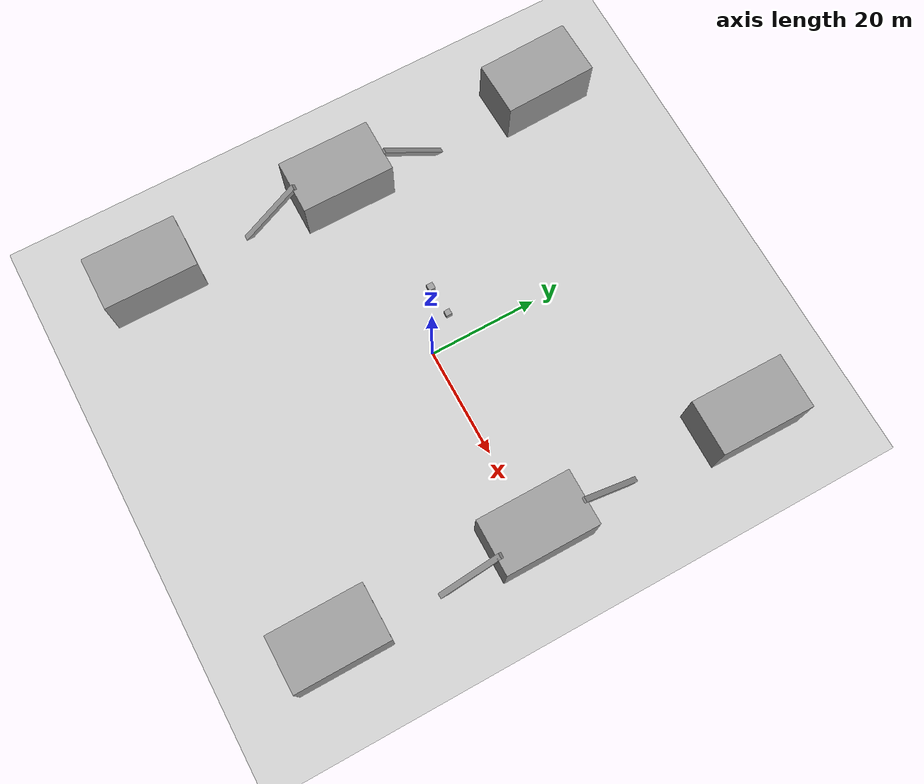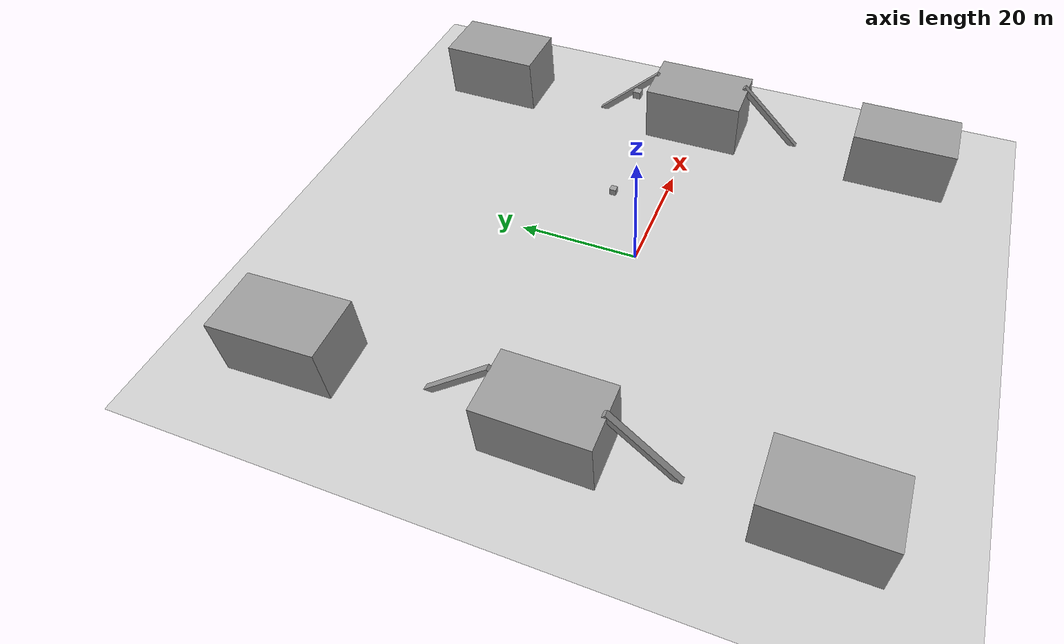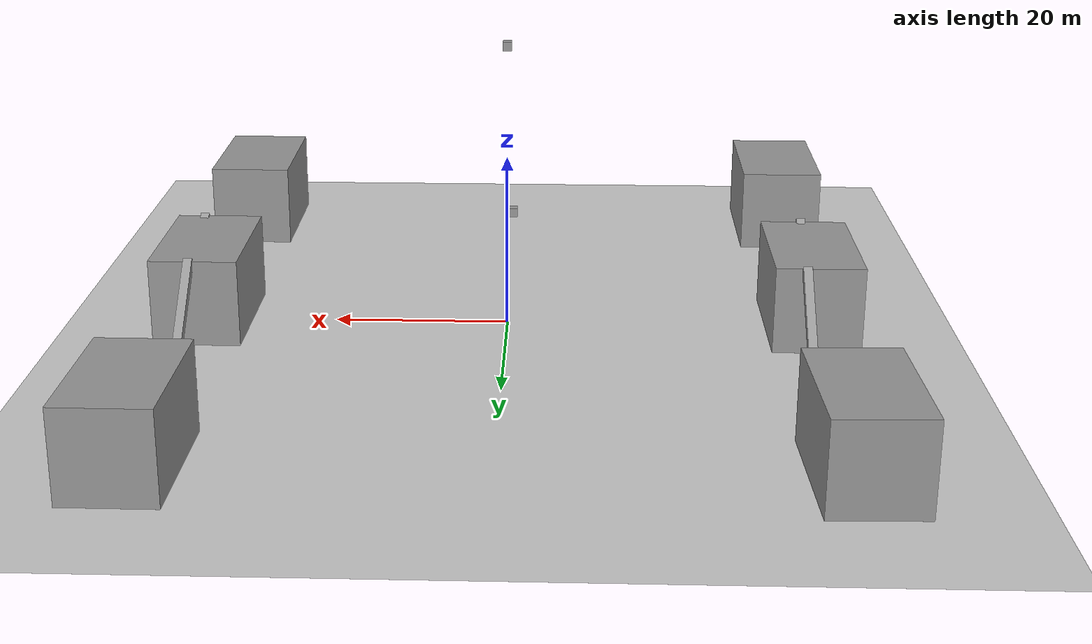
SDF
<sdf version="1.6">
 <world name="default">
  <light name="sun" type="directional">
   <pose>0 0 10 0 -0 0</pose>
   <diffuse>0.8 0.8 0.8 1</diffuse>
   <specular>0.2 0.2 0.2 1</specular>
   <attenuation>
    <range>1000</range>
    <constant>0.9</constant>
    <linear>0.01</linear>
    <quadratic>0.001</quadratic>
   </attenuation>
   <direction>-0.5 0.1 -0.9</direction>
  </light>
  <model name="ground_plane">
   <static>1</static>
   <link name="link">
    <collision name="collision">
     <geometry><plane><normal>0 0 1</normal><size>100 100</size></plane></geometry>
     <surface>
      <contact><collide_bitmask>65535</collide_bitmask></contact>
      <friction><ode><mu>100</mu><mu2>50</mu2></ode></friction>
     </surface>
    </collision>
    <visual name="visual">
     <cast_shadows>0</cast_shadows>
     <geometry><plane><normal>0 0 1</normal><size>100 100</size></plane></geometry>
     <material>
      <script><uri>file://media/materials/scripts/gazebo.material</uri><name>Gazebo/Grey</name></script>
     </material>
    </visual>
   </link>
  </model>
  <gravity>0 0 -9.8</gravity>
  <magnetic_field>6e-06 2.3e-05 -4.2e-05</magnetic_field>
  <atmosphere type="adiabatic"/>
  <physics name="default_physics" default="0" type="ode">
   <max_step_size>0.001</max_step_size>
   <real_time_factor>1</real_time_factor>
   <real_time_update_rate>1000</real_time_update_rate>
  </physics>
  <scene><ambient>0.4 0.4 0.4 1</ambient><background>0.7 0.7 0.7 1</background><shadows>1</shadows></scene>
  <spherical_coordinates>
   <surface_model>EARTH_WGS84</surface_model>
   <latitude_deg>0</latitude_deg>
   <longitude_deg>0</longitude_deg>
   <elevation>0</elevation>
   <heading_deg>0</heading_deg>
  </spherical_coordinates>
  <model name="unit_box">
   <static>1</static>
   <pose>-34.9898 -37 5 1e-06 -0 -0.006221</pose>
   <link name="link">
    <inertial>
     <mass>1</mass>
     <inertia>
      <ixx>0.166667</ixx>
      <ixy>0</ixy>
      <ixz>0</ixz>
      <iyy>0.166667</iyy>
      <iyz>0</iyz>
      <izz>0.166667</izz>
     </inertia>
    </inertial>
    <collision name="collision"><geometry><box><size>10 17 10</size></box></geometry></collision>
    <visual name="visual">
     <geometry><box><size>10 17 10</size></box></geometry>
     <material>
      <script><name>Gazebo/Grey</name><uri>file://media/materials/scripts/gazebo.material</uri></script>
     </material>
    </visual>
   </link>
  </model>
  <model name="unit_box_clone">
   <static>1</static>
   <pose>-35.0075 0.014639 5 0 0 -0.001893</pose>
   <link name="link">
    <inertial>
     <mass>1</mass>
     <inertia>
      <ixx>0.166667</ixx>
      <ixy>0</ixy>
      <ixz>0</ixz>
      <iyy>0.166667</iyy>
      <iyz>0</iyz>
      <izz>0.166667</izz>
     </inertia>
    </inertial>
    <collision name="collision"><geometry><box><size>10 17 10</size></box></geometry></collision>
    <visual name="visual">
     <geometry><box><size>10 17 10</size></box></geometry>
     <material>
      <script><name>Gazebo/Grey</name><uri>file://media/materials/scripts/gazebo.material</uri></script>
     </material>
    </visual>
   </link>
  </model>
  <model name="unit_box_clone_0">
   <static>1</static>
   <pose>-35.0085 40.0385 5 0 1e-06 0.030617</pose>
   <link name="unit_box_clone_0::unit_box_clone_0::link">
    <inertial>
     <mass>1</mass>
     <inertia>
      <ixx>0.166667</ixx>
      <ixy>0</ixy>
      <ixz>0</ixz>
      <iyy>0.166667</iyy>
      <iyz>0</iyz>
      <izz>0.166667</izz>
     </inertia>
    </inertial>
    <collision name="collision"><geometry><box><size>10 17 10</size></box></geometry></collision>
    <visual name="visual">
     <geometry><box><size>10 17 10</size></box></geometry>
     <material>
      <script><name>Gazebo/Grey</name><uri>file://media/materials/scripts/gazebo.material</uri></script>
     </material>
    </visual>
   </link>
  </model>
  <model name="unit_box_clone_1">
   <static>1</static>
   <pose>34.9964 -37 5 0 -0 0.002216</pose>
   <link name="link">
    <inertial>
     <mass>1</mass>
     <inertia>
      <ixx>0.166667</ixx>
      <ixy>0</ixy>
      <ixz>0</ixz>
      <iyy>0.166667</iyy>
      <iyz>0</iyz>
      <izz>0.166667</izz>
     </inertia>
    </inertial>
    <collision name="collision"><geometry><box><size>10 17 10</size></box></geometry></collision>
    <visual name="visual">
     <geometry><box><size>10 17 10</size></box></geometry>
     <material>
      <script><name>Gazebo/Grey</name><uri>file://media/materials/scripts/gazebo.material</uri></script>
     </material>
    </visual>
   </link>
  </model>
  <model name="unit_box_clone_2">
   <static>1</static>
   <pose>34.9938 -0.00168 5 0 -0 0.000667</pose>
   <link name="link">
    <inertial>
     <mass>1</mass>
     <inertia>
      <ixx>0.166667</ixx>
      <ixy>0</ixy>
      <ixz>0</ixz>
      <iyy>0.166667</iyy>
      <iyz>0</iyz>
      <izz>0.166667</izz>
     </inertia>
    </inertial>
    <collision name="collision"><geometry><box><size>10 17 10</size></box></geometry></collision>
    <visual name="visual">
     <geometry><box><size>10 17 10</size></box></geometry>
     <material>
      <script><name>Gazebo/Grey</name><uri>file://media/materials/scripts/gazebo.material</uri></script>
     </material>
    </visual>
   </link>
  </model>
  <model name="unit_box_clone_3">
   <static>1</static>
   <pose>35.0005 40.0025 5 2e-06 -0 -0.008004</pose>
   <link name="link">
    <inertial>
     <mass>1</mass>
     <inertia>
      <ixx>0.166667</ixx>
      <ixy>0</ixy>
      <ixz>0</ixz>
      <iyy>0.166667</iyy>
      <iyz>0</iyz>
      <izz>0.166667</izz>
     </inertia>
    </inertial>
    <collision name="collision"><geometry><box><size>10 17 10</size></box></geometry></collision>
    <visual name="visual">
     <geometry><box><size>10 17 10</size></box></geometry>
     <material>
      <script><name>Gazebo/Grey</name><uri>file://media/materials/scripts/gazebo.material</uri></script>
     </material>
    </visual>
   </link>
  </model>
  <model name="unit_box_0">
   <static>1</static>
   <pose>-0.779903 3.34051 14.6451 0 -0 0</pose>
   <link name="unit_box_0::link">
    <gravity>0</gravity>
    <inertial>
     <mass>0.1</mass>
     <inertia>
      <ixx>0.166667</ixx>
      <ixy>0</ixy>
      <ixz>0</ixz>
      <iyy>0.166667</iyy>
      <iyz>0</iyz>
      <izz>0.166667</izz>
     </inertia>
    </inertial>
    <collision name="collision"><geometry><box><size>1.00002 0.999975 0.999997</size></box></geometry></collision>
    <visual name="visual">
     <geometry><box><size>1.00002 0.999975 0.999997</size></box></geometry>
     <material>
      <script><name>Gazebo/Grey</name><uri>file://media/materials/scripts/gazebo.material</uri></script>
     </material>
    </visual>
   </link>
  </model>
  <model name="unit_box_1">
   <pose>-0.012494 -0.056227 32.9125 2e-06 -2e-05 -0.005014</pose>
   <link name="link">
    <inertial>
     <mass>1</mass>
     <inertia>
      <ixx>0.166667</ixx>
      <ixy>0</ixy>
      <ixz>0</ixz>
      <iyy>0.166667</iyy>
      <iyz>0</iyz>
      <izz>0.166667</izz>
     </inertia>
    </inertial>
    <collision name="collision"><geometry><box><size>0.999992 1.00001 1</size></box></geometry></collision>
    <visual name="visual">
     <geometry><box><size>0.999992 1.00001 1</size></box></geometry>
     <material>
      <script><name>Gazebo/Grey</name><uri>file://media/materials/scripts/gazebo.material</uri></script>
     </material>
    </visual>
   </link>
  </model>
  <model name="unit_box_2">
   <pose>-34.7401 -13.4404 4.62722 -0.78682 0.001471 -0.002587</pose>
   <link name="link">
    <inertial>
     <mass>1</mass>
     <inertia>
      <ixx>0.166667</ixx>
      <ixy>0</ixy>
      <ixz>0</ixz>
      <iyy>0.166667</iyy>
      <iyz>0</iyz>
      <izz>0.166667</izz>
     </inertia>
    </inertial>
    <collision name="collision"><geometry><box><size>0.999999 1 15.5932</size></box></geometry></collision>
    <visual name="visual">
     <geometry><box><size>0.999999 1 15.5932</size></box></geometry>
     <material>
      <script><name>Gazebo/Grey</name><uri>file://media/materials/scripts/gazebo.material</uri></script>
     </material>
    </visual>
   </link>
  </model>
  <model name="unit_box_2_clone">
   <pose>-33.4188 14.132 4.66097 0.821719 0.001471 -0.002587</pose>
   <link name="link">
    <inertial>
     <mass>1</mass>
     <inertia>
      <ixx>0.166667</ixx>
      <ixy>0</ixy>
      <ixz>0</ixz>
      <iyy>0.166667</iyy>
      <iyz>0</iyz>
      <izz>0.166667</izz>
     </inertia>
    </inertial>
    <collision name="collision"><geometry><box><size>0.999999 1 15.5932</size></box></geometry></collision>
    <visual name="visual">
     <geometry><box><size>0.999999 1 15.5932</size></box></geometry>
     <material>
      <script><name>Gazebo/Grey</name><uri>file://media/materials/scripts/gazebo.material</uri></script>
     </material>
    </visual>
   </link>
  </model>
  <model name="unit_box_2_clone_clone_0">
   <pose>35.4897 13.5959 4.66097 0.821719 0.001471 -0.002587</pose>
   <link name="link">
    <inertial>
     <mass>1</mass>
     <inertia>
      <ixx>0.166667</ixx>
      <ixy>0</ixy>
      <ixz>0</ixz>
      <iyy>0.166667</iyy>
      <iyz>0</iyz>
      <izz>0.166667</izz>
     </inertia>
    </inertial>
    <collision name="collision"><geometry><box><size>0.999999 1 15.5932</size></box></geometry></collision>
    <visual name="visual">
     <geometry><box><size>0.999999 1 15.5932</size></box></geometry>
     <material>
      <script><name>Gazebo/Grey</name><uri>file://media/materials/scripts/gazebo.material</uri></script>
     </material>
    </visual>
   </link>
  </model>
  <model name="unit_box_2_clone_0">
   <pose>36.7347 -13.1628 4.62722 -0.78682 0.001471 -0.002587</pose>
   <link name="link">
    <inertial>
     <mass>1</mass>
     <inertia>
      <ixx>0.166667</ixx>
      <ixy>0</ixy>
      <ixz>0</ixz>
      <iyy>0.166667</iyy>
      <iyz>0</iyz>
      <izz>0.166667</izz>
     </inertia>
    </inertial>
    <collision name="collision"><geometry><box><size>0.999999 1 15.5932</size></box></geometry></collision>
    <visual name="visual">
     <geometry><box><size>0.999999 1 15.5932</size></box></geometry>
     <material>
      <script><name>Gazebo/Grey</name><uri>file://media/materials/scripts/gazebo.material</uri></script>
     </material>
    </visual>
   </link>
  </model>
 </world>
</sdf>
